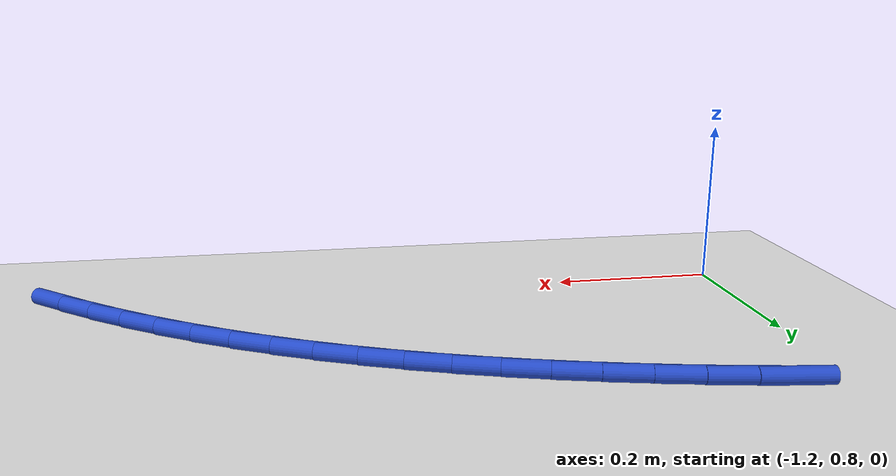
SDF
<sdf version="1.6">
 <world name="default">
  <model name="ground_plane">
   <static>1</static>
   <link name="link">
    <collision name="collision">
     <geometry><plane><normal>0 0 1</normal><size>100 100</size></plane></geometry>
     <surface><friction><ode><mu>100</mu><mu2>50</mu2></ode></friction></surface>
    </collision>
    <visual name="visual">
     <cast_shadows>0</cast_shadows>
     <geometry><plane><normal>0 0 1</normal><size>100 100</size></plane></geometry>
     <material>
      <script><uri>file://media/materials/scripts/gazebo.material</uri><name>Gazebo/WhiteGlow</name></script>
     </material>
    </visual>
   </link>
  </model>
  <model name="line">
   <link name="link_18">
    <pose>-0.3675514113007613 0.8036693079391697 0.01 0 1.57 -0.7358278538178409</pose>
    <collision name="collision">
     <geometry><cylinder><radius>0.01</radius><length>0.08</length></cylinder></geometry>
    </collision>
    <visual name="visual">
     <material>
      <script><name>Gazebo/Blue</name><uri>file://media/materials/scripts/gazebo.material</uri></script>
     </material>
     <geometry><cylinder><radius>0.01</radius><length>0.08</length></cylinder></geometry>
    </visual>
   </link>
   <link name="link_19">
    <pose>-0.40502616543666403 0.8376014957641111 0.01 0 1.57 -0.6952127462390879</pose>
    <collision name="collision">
     <geometry><cylinder><radius>0.01</radius><length>0.08</length></cylinder></geometry>
    </collision>
    <visual name="visual">
     <material>
      <script><name>Gazebo/Blue</name><uri>file://media/materials/scripts/gazebo.material</uri></script>
     </material>
     <geometry><cylinder><radius>0.01</radius><length>0.08</length></cylinder></geometry>
    </visual>
   </link>
   <link name="link_20">
    <pose>-0.44374041935488356 0.869894511175654 0.01 0 1.57 -0.654329127996041</pose>
    <collision name="collision">
     <geometry><cylinder><radius>0.01</radius><length>0.08</length></cylinder></geometry>
    </collision>
    <visual name="visual">
     <material>
      <script><name>Gazebo/Blue</name><uri>file://media/materials/scripts/gazebo.material</uri></script>
     </material>
     <geometry><cylinder><radius>0.01</radius><length>0.08</length></cylinder></geometry>
    </visual>
   </link>
   <link name="link_21">
    <pose>-0.4836079115266298 0.9004751889783869 0.01 0 1.57 -0.6130347547076476</pose>
    <collision name="collision">
     <geometry><cylinder><radius>0.01</radius><length>0.08</length></cylinder></geometry>
    </collision>
    <visual name="visual">
     <material>
      <script><name>Gazebo/Blue</name><uri>file://media/materials/scripts/gazebo.material</uri></script>
     </material>
     <geometry><cylinder><radius>0.01</radius><length>0.08</length></cylinder></geometry>
    </visual>
   </link>
   <link name="link_22">
    <pose>-0.5245423804231131 0.9292703639768991 0.01 0 1.57 -0.5711860656785848</pose>
    <collision name="collision">
     <geometry><cylinder><radius>0.01</radius><length>0.08</length></cylinder></geometry>
    </collision>
    <visual name="visual">
     <material>
      <script><name>Gazebo/Blue</name><uri>file://media/materials/scripts/gazebo.material</uri></script>
     </material>
     <geometry><cylinder><radius>0.01</radius><length>0.08</length></cylinder></geometry>
    </visual>
   </link>
   <link name="link_23">
    <pose>-0.5664575645155436 0.95620687097578 0.01 0 1.57 -0.5286849295531103</pose>
    <collision name="collision">
     <geometry><cylinder><radius>0.01</radius><length>0.08</length></cylinder></geometry>
    </collision>
    <visual name="visual">
     <material>
      <script><name>Gazebo/Blue</name><uri>file://media/materials/scripts/gazebo.material</uri></script>
     </material>
     <geometry><cylinder><radius>0.01</radius><length>0.08</length></cylinder></geometry>
    </visual>
   </link>
   <link name="link_24">
    <pose>-0.6092687666123695 0.9812151134191898 0.01 0 1.57 -0.4865256813492467</pose>
    <collision name="collision">
     <geometry><cylinder><radius>0.01</radius><length>0.08</length></cylinder></geometry>
    </collision>
    <visual name="visual">
     <material>
      <script><name>Gazebo/Blue</name><uri>file://media/materials/scripts/gazebo.material</uri></script>
     </material>
     <geometry><cylinder><radius>0.01</radius><length>0.08</length></cylinder></geometry>
    </visual>
   </link>
   <link name="link_25">
    <pose>-0.6529272632491425 1.004307559706931 0.01 0 1.57 -0.44595731770965374</pose>
    <collision name="collision">
     <geometry><cylinder><radius>0.01</radius><length>0.08</length></cylinder></geometry>
    </collision>
    <visual name="visual">
     <material>
      <script><name>Gazebo/Blue</name><uri>file://media/materials/scripts/gazebo.material</uri></script>
     </material>
     <geometry><cylinder><radius>0.01</radius><length>0.08</length></cylinder></geometry>
    </visual>
   </link>
   <link name="link_26">
    <pose>-0.6974203013391814 1.0255787355537858 0.01 0 1.57 -0.40725122494489757</pose>
    <collision name="collision">
     <geometry><cylinder><radius>0.01</radius><length>0.08</length></cylinder></geometry>
    </collision>
    <visual name="visual">
     <material>
      <script><name>Gazebo/Blue</name><uri>file://media/materials/scripts/gazebo.material</uri></script>
     </material>
     <geometry><cylinder><radius>0.01</radius><length>0.08</length></cylinder></geometry>
    </visual>
   </link>
   <link name="link_27">
    <pose>-0.7427366914631762 1.0451267337859762 0.01 0 1.57 -0.37059056178817495</pose>
    <collision name="collision">
     <geometry><cylinder><radius>0.01</radius><length>0.08</length></cylinder></geometry>
    </collision>
    <visual name="visual">
     <material>
      <script><name>Gazebo/Blue</name><uri>file://media/materials/scripts/gazebo.material</uri></script>
     </material>
     <geometry><cylinder><radius>0.01</radius><length>0.08</length></cylinder></geometry>
    </visual>
   </link>
   <link name="link_28">
    <pose>-0.7888652442018175 1.0630496472297235 0.01 0 1.57 -0.336116367626109</pose>
    <collision name="collision">
     <geometry><cylinder><radius>0.01</radius><length>0.08</length></cylinder></geometry>
    </collision>
    <visual name="visual">
     <material>
      <script><name>Gazebo/Blue</name><uri>file://media/materials/scripts/gazebo.material</uri></script>
     </material>
     <geometry><cylinder><radius>0.01</radius><length>0.08</length></cylinder></geometry>
    </visual>
   </link>
   <link name="link_29">
    <pose>-0.8357947701357948 1.0794455687112487 0.01 0 1.57 -0.30392955717776515</pose>
    <collision name="collision">
     <geometry><cylinder><radius>0.01</radius><length>0.08</length></cylinder></geometry>
    </collision>
    <visual name="visual">
     <material>
      <script><name>Gazebo/Blue</name><uri>file://media/materials/scripts/gazebo.material</uri></script>
     </material>
     <geometry><cylinder><radius>0.01</radius><length>0.08</length></cylinder></geometry>
    </visual>
   </link>
   <link name="link_30">
    <pose>-0.8835140798457987 1.0944125910567741 0.01 0 1.57 -0.27409446702823836</pose>
    <collision name="collision">
     <geometry><cylinder><radius>0.01</radius><length>0.08</length></cylinder></geometry>
    </collision>
    <visual name="visual">
     <material>
      <script><name>Gazebo/Blue</name><uri>file://media/materials/scripts/gazebo.material</uri></script>
     </material>
     <geometry><cylinder><radius>0.01</radius><length>0.08</length></cylinder></geometry>
    </visual>
   </link>
   <link name="link_31">
    <pose>-0.9320119839125185 1.10804880709252 0.01 0 1.57 -0.24664338667362207</pose>
    <collision name="collision">
     <geometry><cylinder><radius>0.01</radius><length>0.08</length></cylinder></geometry>
    </collision>
    <visual name="visual">
     <material>
      <script><name>Gazebo/Blue</name><uri>file://media/materials/scripts/gazebo.material</uri></script>
     </material>
     <geometry><cylinder><radius>0.01</radius><length>0.08</length></cylinder></geometry>
    </visual>
   </link>
   <link name="link_32">
    <pose>-0.9812772929166451 1.1204523096447092 0.01 0 1.57 -0.22158155939954238</pose>
    <collision name="collision">
     <geometry><cylinder><radius>0.01</radius><length>0.08</length></cylinder></geometry>
    </collision>
    <visual name="visual">
     <material>
      <script><name>Gazebo/Blue</name><uri>file://media/materials/scripts/gazebo.material</uri></script>
     </material>
     <geometry><cylinder><radius>0.01</radius><length>0.08</length></cylinder></geometry>
    </visual>
   </link>
   <link name="link_33">
    <pose>-1.0312988174388684 1.1317211915395622 0.01 0 1.57 -0.1980277975267282</pose>
    <collision name="collision">
     <geometry><cylinder><radius>0.01</radius><length>0.08</length></cylinder></geometry>
    </collision>
    <visual name="visual">
     <material>
      <script><name>Gazebo/Blue</name><uri>file://media/materials/scripts/gazebo.material</uri></script>
     </material>
     <geometry><cylinder><radius>0.01</radius><length>0.08</length></cylinder></geometry>
    </visual>
   </link>
   <link name="link_34">
    <pose>-1.0820385991693624 1.141902514895077 0.01 0 1.57 -0.16665743385439394</pose>
    <collision name="collision">
     <geometry><cylinder><radius>0.01</radius><length>0.08</length></cylinder></geometry>
    </collision>
    <visual name="visual">
     <material>
      <script><name>Gazebo/Blue</name><uri>file://media/materials/scripts/gazebo.material</uri></script>
     </material>
     <geometry><cylinder><radius>0.01</radius><length>0.08</length></cylinder></geometry>
    </visual>
   </link>
   <link name="link_35">
    <pose>-1.1331761582934659 1.150504758712714 0.01 0 1.57 -0.1210321985497209</pose>
    <collision name="collision">
     <geometry><cylinder><radius>0.01</radius><length>0.08</length></cylinder></geometry>
    </collision>
    <visual name="visual">
     <material>
      <script><name>Gazebo/Blue</name><uri>file://media/materials/scripts/gazebo.material</uri></script>
     </material>
     <geometry><cylinder><radius>0.01</radius><length>0.08</length></cylinder></geometry>
    </visual>
   </link>
  </model>
 </world>
</sdf>
